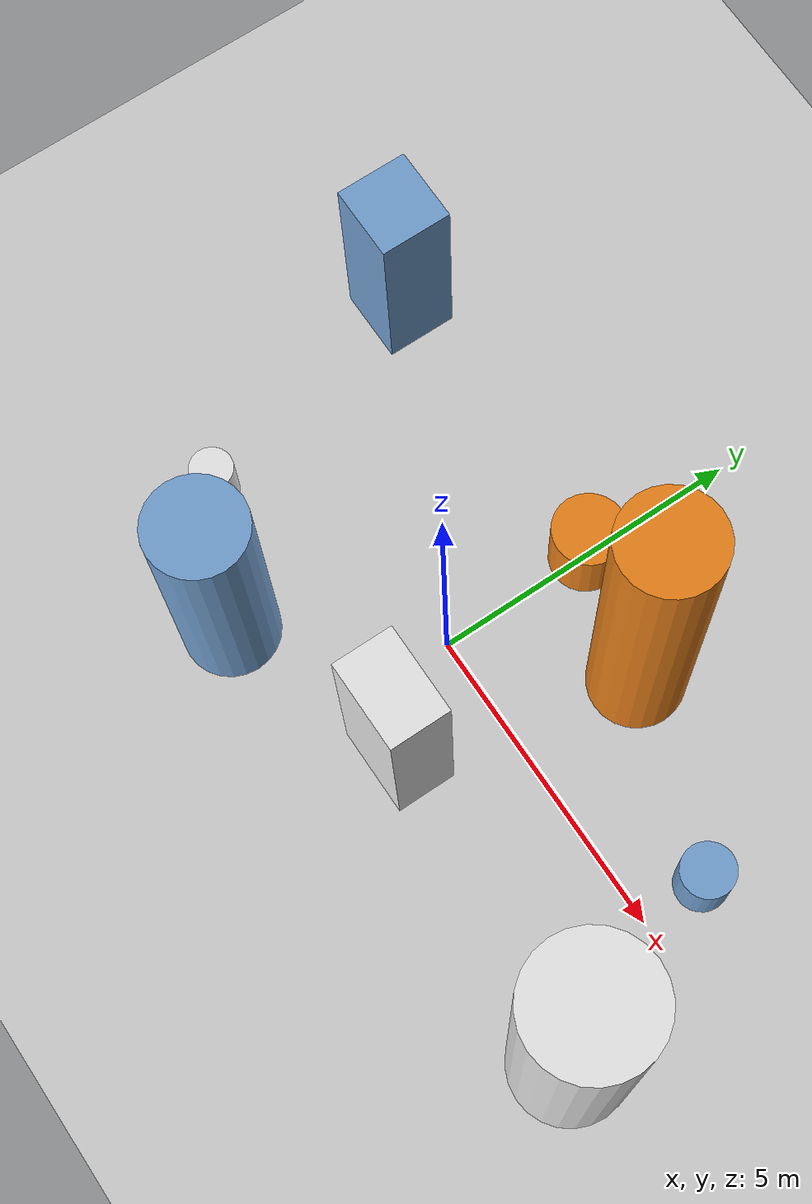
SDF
<?xml version='1.0'?>
<sdf version='1.6'>
  <world name='routeA_rl_v1__support_expansion__rl_val__mixed_3d_low_density_route__000163'>
    <!-- Sun light -->
    <light name='sun' type='directional'>
      <cast_shadows>1</cast_shadows>
      <pose>0 0 10 0 0 0</pose>
      <diffuse>0.8 0.8 0.8 1</diffuse>
      <specular>0.2 0.2 0.2 1</specular>
      <attenuation>
        <range>1000</range>
        <constant>0.9</constant>
        <linear>0.01</linear>
        <quadratic>0.001</quadratic>
      </attenuation>
      <direction>-0.5 0.1 -0.9</direction>
    </light>

    <!-- Ground plane -->
    <model name='ground_plane'>
      <static>1</static>
      <link name='link'>
        <collision name='collision'>
          <geometry>
            <plane>
              <normal>0 0 1</normal>
              <size>100 100</size>
            </plane>
          </geometry>
          <surface>
            <contact>
              <collide_bitmask>65535</collide_bitmask>
              <ode/>
            </contact>
            <friction>
              <ode>
                <mu>100</mu>
                <mu2>50</mu2>
              </ode>
              <torsional><ode/></torsional>
            </friction>
            <bounce/>
          </surface>
          <max_contacts>10</max_contacts>
        </collision>
        <visual name='visual'>
          <cast_shadows>0</cast_shadows>
          <geometry>
            <plane>
              <normal>0 0 1</normal>
              <size>100 100</size>
            </plane>
          </geometry>
          <material>
            <script>
              <uri>file://media/materials/scripts/gazebo.material</uri>
              <n>Gazebo/Grey</n>
            </script>
          </material>
        </visual>
      </link>
    </model>

    <!-- Environment -->
    <magnetic_field>6e-06 2.3e-05 -4.2e-05</magnetic_field>
    <atmosphere type='adiabatic'/>
    <physics name='default_physics' default='0' type='ode'>
      <gravity>0 0 -9.8</gravity>
      <max_step_size>0.004</max_step_size>
      <real_time_factor>1</real_time_factor>
      <real_time_update_rate>250</real_time_update_rate>
    </physics>
    <scene>
      <ambient>0.4 0.4 0.4 1</ambient>
      <background>0.7 0.7 0.7 1</background>
      <shadows>1</shadows>
    </scene>
    <wind/>
    <spherical_coordinates>
      <surface_model>EARTH_WGS84</surface_model>
      <latitude_deg>0</latitude_deg>
      <longitude_deg>0</longitude_deg>
      <elevation>0</elevation>
      <heading_deg>0</heading_deg>
    </spherical_coordinates>

    <!-- ============ OBSTACLES (8) ============ -->
    <model name='low_obs_0'>
      <static>1</static>
      <link name='link'>
        <visual name='visual'>
          <geometry>
            <cylinder>
              <radius>0.3400</radius>
              <length>0.8851</length>
            </cylinder>
          </geometry>
          <material>
            <script>
              <n>Gazebo/White</n>
              <uri>file://media/materials/scripts/gazebo.material</uri>
            </script>
            <ambient>0.9 0.9 0.9 1</ambient>
          </material>
        </visual>
        <collision name='collision'>
          <geometry>
            <cylinder>
              <radius>0.3400</radius>
              <length>0.8851</length>
            </cylinder>
          </geometry>
          <max_contacts>10</max_contacts>
          <surface>
            <contact><ode/></contact>
            <bounce/>
            <friction>
              <ode><mu>1</mu><mu2>1</mu2></ode>
              <torsional><ode/></torsional>
            </friction>
          </surface>
        </collision>
      </link>
      <pose>-4.0000 -1.5000 0.4425 0 0 0.0000</pose>
    </model>

    <model name='low_obs_1'>
      <static>1</static>
      <link name='link'>
        <visual name='visual'>
          <geometry>
            <cylinder>
              <radius>0.5622</radius>
              <length>1.1412</length>
            </cylinder>
          </geometry>
          <material>
            <script>
              <n>Gazebo/Orange</n>
              <uri>file://media/materials/scripts/gazebo.material</uri>
            </script>
            <ambient>0.9 0.5 0.1 1</ambient>
          </material>
        </visual>
        <collision name='collision'>
          <geometry>
            <cylinder>
              <radius>0.5622</radius>
              <length>1.1412</length>
            </cylinder>
          </geometry>
          <max_contacts>10</max_contacts>
          <surface>
            <contact><ode/></contact>
            <bounce/>
            <friction>
              <ode><mu>1</mu><mu2>1</mu2></ode>
              <torsional><ode/></torsional>
            </friction>
          </surface>
        </collision>
      </link>
      <pose>0.0000 2.5000 0.5706 0 0 0.0000</pose>
    </model>

    <model name='low_obs_2'>
      <static>1</static>
      <link name='link'>
        <visual name='visual'>
          <geometry>
            <cylinder>
              <radius>0.4118</radius>
              <length>0.9859</length>
            </cylinder>
          </geometry>
          <material>
            <script>
              <n>Gazebo/Blue</n>
              <uri>file://media/materials/scripts/gazebo.material</uri>
            </script>
            <ambient>0.447 0.624 0.812 1</ambient>
          </material>
        </visual>
        <collision name='collision'>
          <geometry>
            <cylinder>
              <radius>0.4118</radius>
              <length>0.9859</length>
            </cylinder>
          </geometry>
          <max_contacts>10</max_contacts>
          <surface>
            <contact><ode/></contact>
            <bounce/>
            <friction>
              <ode><mu>1</mu><mu2>1</mu2></ode>
              <torsional><ode/></torsional>
            </friction>
          </surface>
        </collision>
      </link>
      <pose>5.0000 1.0000 0.4929 0 0 0.0000</pose>
    </model>

    <model name='tall_obs_0'>
      <static>1</static>
      <link name='link'>
        <visual name='visual'>
          <geometry>
            <cylinder>
              <radius>0.7392</radius>
              <length>4.2496</length>
            </cylinder>
          </geometry>
          <material>
            <script>
              <n>Gazebo/Blue</n>
              <uri>file://media/materials/scripts/gazebo.material</uri>
            </script>
            <ambient>0.447 0.624 0.812 1</ambient>
          </material>
        </visual>
        <collision name='collision'>
          <geometry>
            <cylinder>
              <radius>0.7392</radius>
              <length>4.2496</length>
            </cylinder>
          </geometry>
          <max_contacts>10</max_contacts>
          <surface>
            <contact><ode/></contact>
            <bounce/>
            <friction>
              <ode><mu>1</mu><mu2>1</mu2></ode>
              <torsional><ode/></torsional>
            </friction>
          </surface>
        </collision>
      </link>
      <pose>-2.0000 -2.5000 2.1248 0 0 0.0000</pose>
    </model>

    <model name='tall_obs_1'>
      <static>1</static>
      <link name='link'>
        <visual name='visual'>
          <geometry>
            <cylinder>
              <radius>0.7435</radius>
              <length>5.7791</length>
            </cylinder>
          </geometry>
          <material>
            <script>
              <n>Gazebo/Orange</n>
              <uri>file://media/materials/scripts/gazebo.material</uri>
            </script>
            <ambient>0.9 0.5 0.1 1</ambient>
          </material>
        </visual>
        <collision name='collision'>
          <geometry>
            <cylinder>
              <radius>0.7435</radius>
              <length>5.7791</length>
            </cylinder>
          </geometry>
          <max_contacts>10</max_contacts>
          <surface>
            <contact><ode/></contact>
            <bounce/>
            <friction>
              <ode><mu>1</mu><mu2>1</mu2></ode>
              <torsional><ode/></torsional>
            </friction>
          </surface>
        </collision>
      </link>
      <pose>2.0000 2.0000 2.8895 0 0 0.0000</pose>
    </model>

    <model name='tall_obs_2'>
      <static>1</static>
      <link name='link'>
        <visual name='visual'>
          <geometry>
            <cylinder>
              <radius>0.9005</radius>
              <length>6.0293</length>
            </cylinder>
          </geometry>
          <material>
            <script>
              <n>Gazebo/White</n>
              <uri>file://media/materials/scripts/gazebo.material</uri>
            </script>
            <ambient>0.9 0.9 0.9 1</ambient>
          </material>
        </visual>
        <collision name='collision'>
          <geometry>
            <cylinder>
              <radius>0.9005</radius>
              <length>6.0293</length>
            </cylinder>
          </geometry>
          <max_contacts>10</max_contacts>
          <surface>
            <contact><ode/></contact>
            <bounce/>
            <friction>
              <ode><mu>1</mu><mu2>1</mu2></ode>
              <torsional><ode/></torsional>
            </friction>
          </surface>
        </collision>
      </link>
      <pose>6.0000 -2.0000 3.0147 0 0 0.0000</pose>
    </model>

    <model name='med_obs_0'>
      <static>1</static>
      <link name='link'>
        <visual name='visual'>
          <geometry>
            <box>
              <size>1.1817 1.1249 3.1892</size>
            </box>
          </geometry>
          <material>
            <script>
              <n>Gazebo/Blue</n>
              <uri>file://media/materials/scripts/gazebo.material</uri>
            </script>
            <ambient>0.447 0.624 0.812 1</ambient>
          </material>
        </visual>
        <collision name='collision'>
          <geometry>
            <box>
              <size>1.1817 1.1249 3.1892</size>
            </box>
          </geometry>
          <max_contacts>10</max_contacts>
          <surface>
            <contact><ode/></contact>
            <bounce/>
            <friction>
              <ode><mu>1</mu><mu2>1</mu2></ode>
              <torsional><ode/></torsional>
            </friction>
          </surface>
        </collision>
      </link>
      <pose>-5.0000 2.5000 1.5946 0 0 0.0000</pose>
    </model>

    <model name='med_obs_1'>
      <static>1</static>
      <link name='link'>
        <visual name='visual'>
          <geometry>
            <box>
              <size>1.3959 0.9431 3.4549</size>
            </box>
          </geometry>
          <material>
            <script>
              <n>Gazebo/White</n>
              <uri>file://media/materials/scripts/gazebo.material</uri>
            </script>
            <ambient>0.9 0.9 0.9 1</ambient>
          </material>
        </visual>
        <collision name='collision'>
          <geometry>
            <box>
              <size>1.3959 0.9431 3.4549</size>
            </box>
          </geometry>
          <max_contacts>10</max_contacts>
          <surface>
            <contact><ode/></contact>
            <bounce/>
            <friction>
              <ode><mu>1</mu><mu2>1</mu2></ode>
              <torsional><ode/></torsional>
            </friction>
          </surface>
        </collision>
      </link>
      <pose>1.0000 -1.5000 1.7274 0 0 0.0000</pose>
    </model>

    <!-- GUI camera -->
    <gui fullscreen='0'>
      <camera name='user_camera'>
        <pose>-15 0 18 0 0.85 0.15</pose>
        <view_controller>orbit</view_controller>
        <projection_type>perspective</projection_type>
      </camera>
    </gui>
  </world>
</sdf>
